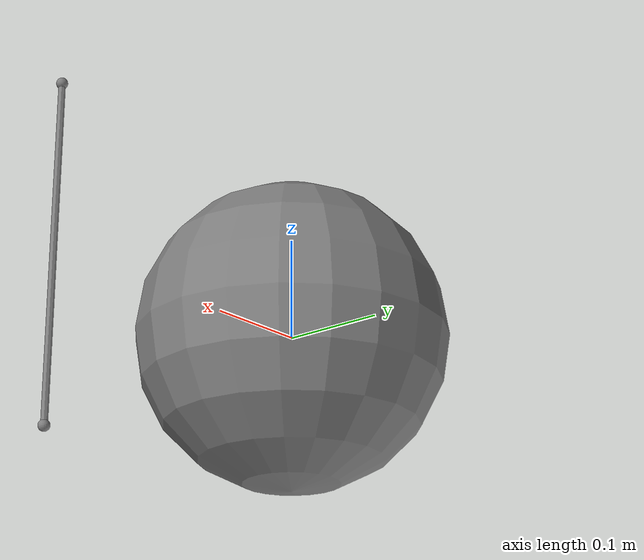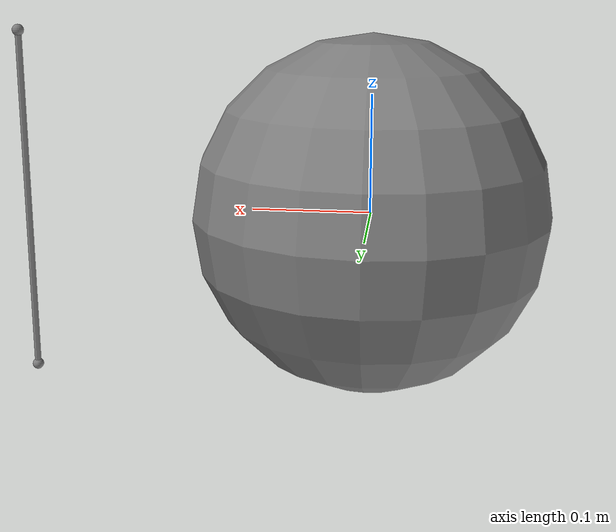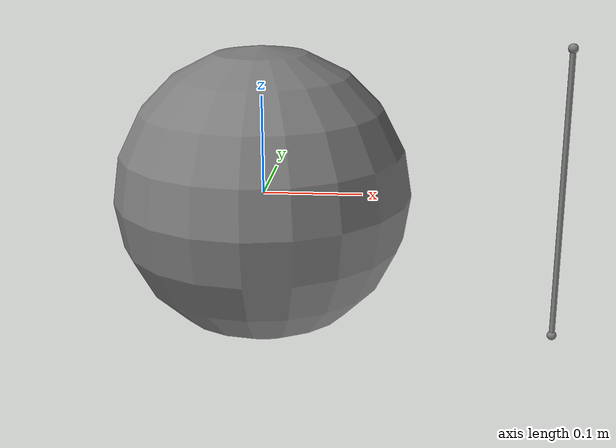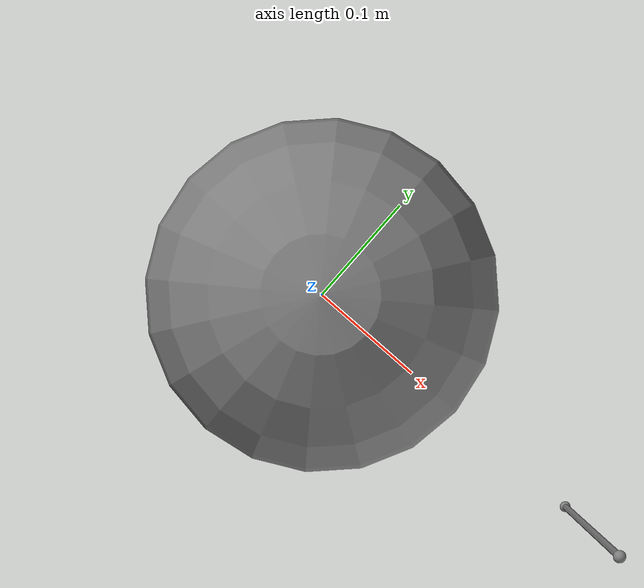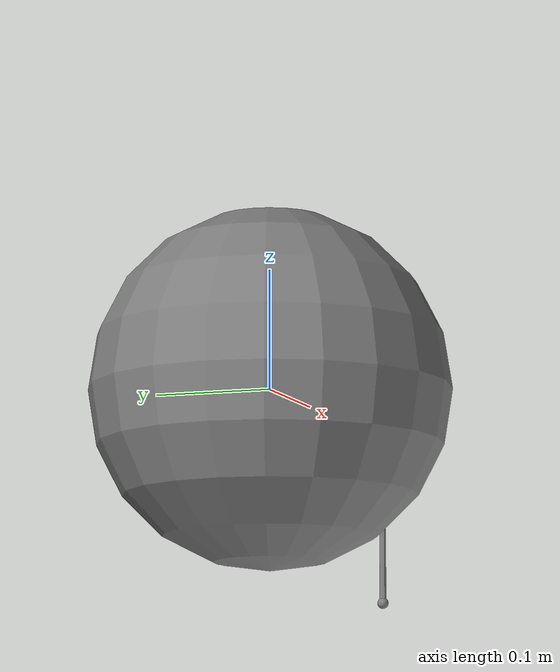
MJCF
<mujoco>
  <worldbody>
    <body name="b0">
      <geom name="wrap_sphere" type="sphere" size="0.15"/>
      <site name="s1" pos="0.3 0 0.15"/>
      <site name="side_origin" pos="0 0 0"/>
      <body name="b1">
        <joint name="j1" type="hinge" axis="0 1 0"/>
        <geom type="sphere" size="0.01" mass="0.1"/>
        <site name="s2" pos="0.3 0 -0.15"/>
      </body>
    </body>
  </worldbody>
  <tendon>
    <spatial name="t_origin">
      <site site="s1"/>
      <geom geom="wrap_sphere" sidesite="side_origin"/>
      <site site="s2"/>
    </spatial>
  </tendon>
</mujoco>
